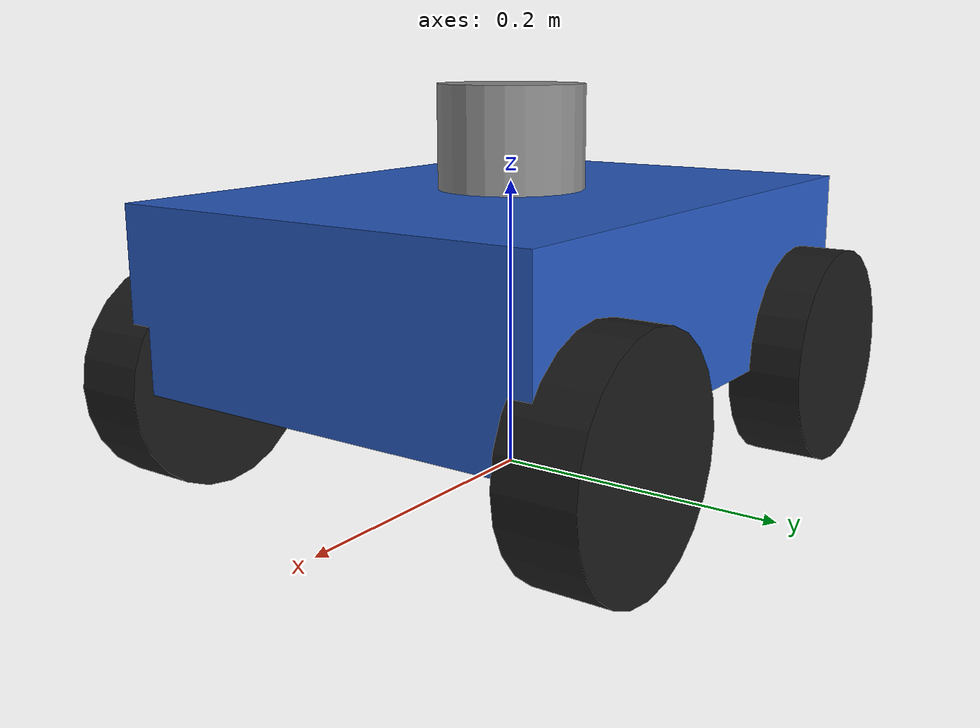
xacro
<?xml version="1.0"?>
<robot xmlns:xacro="http://www.ros.org/wiki/xacro" name="amr_robot">

  <xacro:property name="PI" value="3.14159265359"/>

  <!-- Base chassis -->
  <xacro:property name="base_length"  value="0.40"/>
  <xacro:property name="base_width"   value="0.30"/>
  <xacro:property name="base_height"  value="0.12"/>
  <xacro:property name="base_mass"    value="12.0"/>

  <!-- Mecanum wheels -->
  <xacro:property name="wheel_radius"  value="0.075"/>
  <xacro:property name="wheel_width"   value="0.05"/>
  <xacro:property name="wheel_mass"    value="0.5"/>
  <xacro:property name="wheel_sep_x"   value="0.28"/>
  <xacro:property name="wheel_sep_y"   value="0.32"/>

  <!-- ── Materials -->
  <material name="chassis_blue">  <color rgba="0.15 0.35 0.75 1.0"/> </material>
  <material name="wheel_black">   <color rgba="0.10 0.10 0.10 1.0"/> </material>
  <material name="sensor_grey">   <color rgba="0.55 0.55 0.55 1.0"/> </material>

  <!-- ── Base footprint  -->
  <link name="base_footprint"/>
  <joint name="base_footprint_to_base_link" type="fixed">
    <parent link="base_footprint"/>
    <child  link="base_link"/>
    <origin xyz="0 0 ${wheel_radius}" rpy="0 0 0"/>
  </joint>

  <!-- ── Base link (chassis)  -->
  <link name="base_link">
    <visual>
      <origin xyz="0 0 ${base_height/2}" rpy="0 0 0"/>
      <geometry><box size="${base_length} ${base_width} ${base_height}"/></geometry>
      <material name="chassis_blue"/>
    </visual>
    <collision>
      <origin xyz="0 0 ${base_height/2}" rpy="0 0 0"/>
      <geometry><box size="${base_length} ${base_width} ${base_height}"/></geometry>
    </collision>
    <inertial>
      <origin xyz="0 0 ${base_height/2}" rpy="0 0 0"/>
      <mass value="${base_mass}"/>
      <inertia
        ixx="${(1.0/12.0)*base_mass*(base_width*base_width   + base_height*base_height)}"
        ixy="0.0" ixz="0.0"
        iyy="${(1.0/12.0)*base_mass*(base_length*base_length + base_height*base_height)}"
        iyz="0.0"
        izz="${(1.0/12.0)*base_mass*(base_length*base_length + base_width*base_width)}"/>
    </inertial>
  </link>
  <gazebo reference="base_link"><material>Gazebo/Blue</material></gazebo>

  <!-- ── Mecanum Wheel Macro  -->
  <xacro:macro name="mecanum_wheel" params="prefix x_pos y_pos fdir1">
    <link name="${prefix}_wheel_link">
      <visual>
        <origin xyz="0 0 0" rpy="${PI/2} 0 0"/>
        <geometry><cylinder radius="${wheel_radius}" length="${wheel_width}"/></geometry>
        <material name="wheel_black"/>
      </visual>
      <collision>
        <origin xyz="0 0 0" rpy="${PI/2} 0 0"/>
        <geometry><cylinder radius="${wheel_radius}" length="${wheel_width}"/></geometry>
      </collision>
      <inertial>
        <origin xyz="0 0 0" rpy="${PI/2} 0 0"/>
        <mass value="${wheel_mass}"/>
        <inertia
          ixx="${(1.0/12.0)*wheel_mass*(3.0*wheel_radius*wheel_radius + wheel_width*wheel_width)}"
          ixy="0.0" ixz="0.0"
          iyy="${(1.0/12.0)*wheel_mass*(3.0*wheel_radius*wheel_radius + wheel_width*wheel_width)}"
          iyz="0.0"
          izz="${(0.5)*wheel_mass*wheel_radius*wheel_radius}"/>
      </inertial>
    </link>
    <joint name="${prefix}_wheel_joint" type="continuous">
      <parent link="base_link"/>
      <child  link="${prefix}_wheel_link"/>
      <origin xyz="${x_pos} ${y_pos} 0" rpy="0 0 0"/>
      <axis xyz="0 1 0"/>
      <dynamics damping="0.005" friction="0.05"/>
    </joint>
    <gazebo reference="${prefix}_wheel_link">
      <mu1>0.0</mu1>
      <mu2>1.0</mu2>
      <fdir1>${fdir1}</fdir1>
      <kp>1000000.0</kp>
      <kd>100.0</kd>
      <minDepth>0.001</minDepth>
      <maxVel>5.0</maxVel>
      <material>Gazebo/Black</material>
    </gazebo>
  </xacro:macro>

  <!-- FL/RR → +45°, FR/RL → -45° -->
  <xacro:mecanum_wheel prefix="front_left"
    x_pos="${ wheel_sep_x/2}" y_pos="${ wheel_sep_y/2}" fdir1="0.707107  0.707107 0"/>
  <xacro:mecanum_wheel prefix="front_right"
    x_pos="${ wheel_sep_x/2}" y_pos="${-wheel_sep_y/2}" fdir1="0.707107 -0.707107 0"/>
  <xacro:mecanum_wheel prefix="rear_left"
    x_pos="${-wheel_sep_x/2}" y_pos="${ wheel_sep_y/2}" fdir1="0.707107 -0.707107 0"/>
  <xacro:mecanum_wheel prefix="rear_right"
    x_pos="${-wheel_sep_x/2}" y_pos="${-wheel_sep_y/2}" fdir1="0.707107  0.707107 0"/>

  <!-- ── LiDAR  -->
  <link name="lidar_link">
    <visual>
      <origin xyz="0 0 0" rpy="0 0 0"/>
      <geometry><cylinder radius="0.05" length="0.07"/></geometry>
      <material name="sensor_grey"/>
    </visual>
    <collision>
      <origin xyz="0 0 0" rpy="0 0 0"/>
      <geometry><cylinder radius="0.05" length="0.07"/></geometry>
    </collision>
    <inertial>
      <mass value="0.1"/>
      <inertia ixx="0.0001" ixy="0.0" ixz="0.0" iyy="0.0001" iyz="0.0" izz="0.0001"/>
    </inertial>
  </link>
  <joint name="lidar_joint" type="fixed">
    <parent link="base_link"/>
    <child  link="lidar_link"/>
    <origin xyz="0.0 0.0 ${base_height + 0.035}" rpy="0 0 0"/>
  </joint>

  <gazebo reference="lidar_link">
    <sensor name="lidar_sensor" type="ray">
      <always_on>true</always_on>
      <visualize>true</visualize>
      <update_rate>30</update_rate>
      <ray>
        <scan>
          <horizontal>
            <samples>720</samples>
            <resolution>1</resolution>
            <!-- max = π - 2π/720 để tránh ray đầu/cuối trùng hướng tại ±π -->
            <min_angle>-3.14159265</min_angle>
            <max_angle> 3.13286</max_angle>
          </horizontal>
        </scan>
        <range>
          <min>0.12</min>
          <max>12.0</max>
          <resolution>0.01</resolution>
        </range>
        <noise>
          <type>gaussian</type>
          <mean>0.0</mean>
          <stddev>0.008</stddev>
        </noise>
      </ray>
      <plugin name="gazebo_ros_lidar" filename="libgazebo_ros_ray_sensor.so">
        <ros>
          <remapping>~/out:=scan</remapping>
        </ros>
        <output_type>sensor_msgs/LaserScan</output_type>
        <frame_name>lidar_link</frame_name>
      </plugin>
    </sensor>
  </gazebo>

  <!-- ── IMU ────────────────────────────────────────────────────────── -->
  <link name="imu_link">
    <visual>
      <origin xyz="0 0 0" rpy="0 0 0"/>
      <geometry><box size="0.05 0.05 0.02"/></geometry>
      <material name="sensor_grey"/>
    </visual>
    <collision>
      <origin xyz="0 0 0" rpy="0 0 0"/>
      <geometry><box size="0.05 0.05 0.02"/></geometry>
    </collision>
    <inertial>
      <mass value="0.05"/>
      <inertia ixx="0.00001" ixy="0.0" ixz="0.0" iyy="0.00001" iyz="0.0" izz="0.00001"/>
    </inertial>
  </link>
  <joint name="imu_joint" type="fixed">
    <parent link="base_link"/>
    <child  link="imu_link"/>
    <origin xyz="0.0 0.0 ${base_height/2}" rpy="0 0 0"/>
  </joint>

  <gazebo reference="imu_link">
    <sensor name="imu_sensor" type="imu">
      <always_on>true</always_on>
      <update_rate>100</update_rate>
      <imu>
        <angular_velocity>
          <x><noise type="gaussian"><mean>0</mean><stddev>0.009</stddev></noise></x>
          <y><noise type="gaussian"><mean>0</mean><stddev>0.009</stddev></noise></y>
          <z><noise type="gaussian"><mean>0</mean><stddev>0.009</stddev></noise></z>
        </angular_velocity>
        <linear_acceleration>
          <x><noise type="gaussian"><mean>0</mean><stddev>0.021</stddev></noise></x>
          <y><noise type="gaussian"><mean>0</mean><stddev>0.021</stddev></noise></y>
          <z><noise type="gaussian"><mean>0</mean><stddev>0.021</stddev></noise></z>
        </linear_acceleration>
      </imu>
      <plugin name="gazebo_ros_imu" filename="libgazebo_ros_imu_sensor.so">
        <ros><remapping>~/out:=imu/data</remapping></ros>
        <initial_orientation_as_reference>false</initial_orientation_as_reference>
      </plugin>
    </sensor>
  </gazebo>

  <gazebo>
    <plugin name="planar_move" filename="libgazebo_ros_planar_move.so">
      <ros>
        <remapping>cmd_vel:=cmd_vel_safe</remapping>
        <remapping>odom:=odom</remapping>
      </ros>
      <update_rate>50.0</update_rate>
      <robot_base_frame>base_footprint</robot_base_frame>
      <odometry_frame>odom</odometry_frame>
      <publish_odom>true</publish_odom>
      <publish_odom_tf>true</publish_odom_tf>
      <covariance_x>0.001</covariance_x>
      <covariance_y>0.001</covariance_y>
      <covariance_yaw>0.001</covariance_yaw>
    </plugin>
  </gazebo>

  <!-- Joint state publisher — wheel joints → /joint_states -->
  <gazebo>
    <plugin name="joint_state_publisher" filename="libgazebo_ros_joint_state_publisher.so">
      <ros><remapping>~/out:=joint_states</remapping></ros>
      <update_rate>50</update_rate>
      <joint_name>front_left_wheel_joint</joint_name>
      <joint_name>front_right_wheel_joint</joint_name>
      <joint_name>rear_left_wheel_joint</joint_name>
      <joint_name>rear_right_wheel_joint</joint_name>
    </plugin>
  </gazebo>

</robot>
